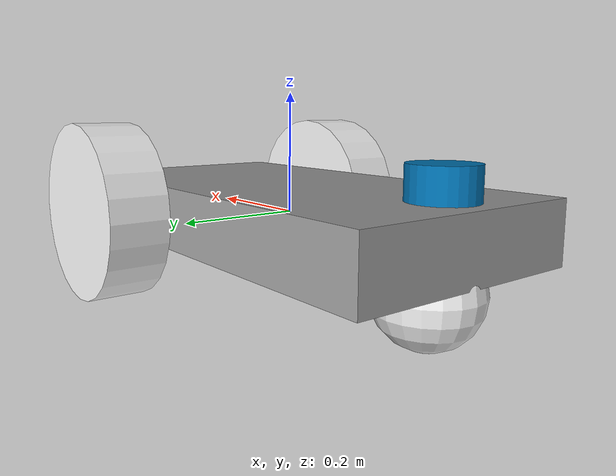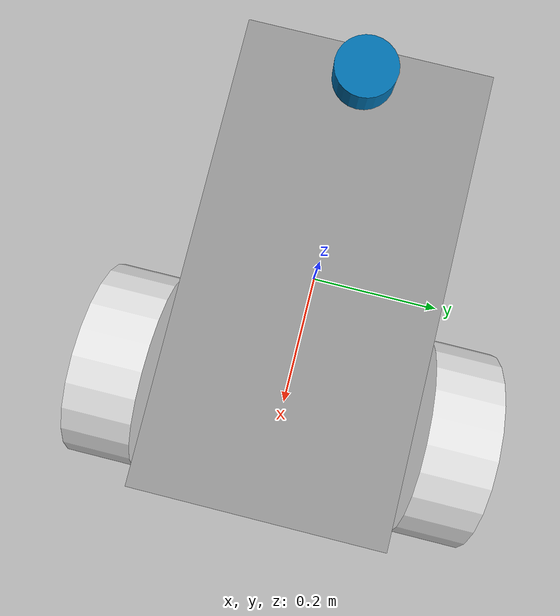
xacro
<?xml version="1.0"?>
<robot xmlns:xacro="http://ros.org/wiki/xacro">
  <!-- Base Link -->
  <link name="base_link">
    <visual>
      <geometry>
        <box size="0.75 0.4 0.1"/>
      </geometry>
      <material name="gray"/>
    </visual>

    <xacro:box_inertial mass="1" x="0.75" y="0.4" z="0.1"/>

    <collision>
      <geometry>
        <box size="0.75 0.4 0.1"/>
      </geometry>
    </collision>
  </link>

  <!-- Right Wheel -->
  <link name="wheel_right_link">
    <xacro:cylinder_inertial mass="2" radius="0.15" length="0.1"/>

    <visual>
      <geometry>
        <cylinder radius="0.15" length="0.1"/>
      </geometry>
      <material name="white"/>
    </visual>

    <collision>
      <geometry>
        <cylinder radius="0.15" length="0.1"/>
      </geometry>
      <surface>
        <friction>
          <ode>
            <mu>0</mu>
            <mu2>0</mu2>
            <slip1>1.0</slip1>
            <slip2>1.0</slip2>
          </ode>
        </friction>
      </surface>
      <contact_coefficients mu="1" kp="1e+13" kd="1.0"/>
    </collision>
  </link>

  <joint name="wheel_right_joint" type="continuous">
    <origin xyz="0.2 0.25 0.0" rpy="1.57 0.0 0.0"/>
    <parent link="base_link"/>
    <child link="wheel_right_link"/>
    <axis xyz="0.0 0.0 1.0"/>
  </joint>

  <!-- Left Wheel -->
  <link name="wheel_left_link">
    <xacro:cylinder_inertial mass="2" radius="0.15" length="0.1"/>

    <visual>
      <geometry>
        <cylinder radius="0.15" length="0.1"/>
      </geometry>
      <material name="white"/>
    </visual>

    <collision>
      <geometry>
        <cylinder radius="0.15" length="0.1"/>
      </geometry>
      <surface>
        <friction>
          <ode>
            <mu>0</mu>
            <mu2>0</mu2>
            <slip1>1.0</slip1>
            <slip2>1.0</slip2>
          </ode>
        </friction>
      </surface>
      <contact_coefficients mu="1" kp="1e+13" kd="1.0"/>
    </collision>
  </link>

  <joint name="wheel_left_joint" type="continuous">
    <origin xyz="0.2 -0.25 0.0" rpy="1.57 0.0 0.0"/>
    <parent link="base_link"/>
    <child link="wheel_left_link"/>
    <axis xyz="0.0 0.0 1.0"/>
  </joint>

  <!-- Caster Wheel -->
  <link name="caster">
    <xacro:sphere_inertial mass="1" radius="0.08"/>

    <visual>
      <geometry>
        <sphere radius=".08" />
      </geometry>
      <material name="white" />
    </visual>

    <collision>
      <geometry>
        <sphere radius=".08" />
      </geometry>
      <surface>
        <friction>
          <ode>
            <mu>0</mu>
            <mu2>0</mu2>
            <slip1>1.0</slip1>
            <slip2>1.0</slip2>
          </ode>
        </friction>
      </surface>
    </collision>
  </link>

  <joint name="caster_joint" type="continuous">
    <origin xyz="-0.3 0.0 -0.07" rpy="0.0 0.0 0.0"/>
    <axis xyz="0 0 1" />
    <parent link="base_link"/>
    <child link="caster"/>
  </joint>

  <!-- Laser Link -->
  <link name="laser">
    <xacro:cylinder_inertial mass="1" radius="0.05" length="0.05"/>

    <visual>
      <geometry>
        <cylinder radius="0.05" length="0.05"/>
      </geometry>
    </visual>

    <collision>
      <origin/>
      <geometry>
        <sphere radius=".08" />
      </geometry>
    </collision>
  </link>

  <joint name="laser_joint" type="fixed">
    <origin xyz="-0.32 0.0 0.08" rpy="0.0 0.0 3.14"/>
    <axis xyz="0 0 1" />
    <parent link="base_link"/>
    <child link="laser"/>
  </joint>
</robot>
